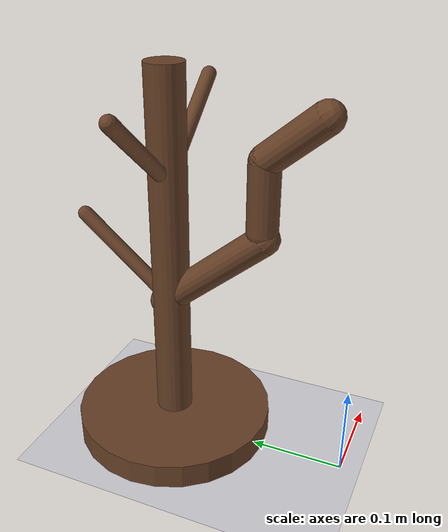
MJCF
<mujoco model="mug_rack">
    <visual>
        <headlight ambient="0.3 0.3 0.3" diffuse="0.3 0.3 0.3" specular="0.1 0.1 0.1"/>
    </visual>

    <asset>
        <texture name="tex_wood" type="2d" builtin="flat" rgb1="0.4 0.25 0.15" rgb2="0.45 0.3 0.2" width="512" height="512"/>
        <material name="mat_wood" texture="tex_wood" specular="0.1" shininess="0.1"/>

        <texture name="tex_sky" type="skybox" builtin="gradient" rgb1="0.4 0.6 0.85" rgb2="1.0 1.0 1.0" width="256" height="256"/>

        <texture name="tex_floor" type="2d" builtin="checker" rgb1="0.75 0.75 0.78" rgb2="0.88 0.88 0.9" width="512" height="512"/>
        <material name="mat_floor" texture="tex_floor" texrepeat="4 4" specular="0.1" shininess="0.1"/>
    </asset>

    <worldbody>
        <geom name="floor" type="plane" size="3 3 0.1" material="mat_floor"/>

        <light name="light_key"  directional="true" castshadow="true"  pos="1.5 -1.5 3" dir="-0.4 0.4 -1" diffuse="0.7 0.7 0.65" specular="0.3 0.3 0.3"/>
        <light name="light_fill" directional="true" castshadow="false" pos="-1.5 1.5 2" dir="0.4 -0.4 -1" diffuse="0.25 0.25 0.3"/>
        <body name="camera_center" pos="0 0 0 "/>
        <body name="mug_rack" pos="0.0 0.2 0.0" euler="0 0 -180">
            <geom name="base" type="cylinder" size="0.11 0.014" pos="0 0 0.014" material="mat_wood"/>

            <geom name="pole" type="cylinder" size="0.02 0.20" pos="0 0 0.216" material="mat_wood"/>

            <geom name="branch_top_1" type="capsule" size="0.008 0.072" pos="0.045 0 0.338" euler="0 50 0" material="mat_wood"/>
            <geom name="branch_top_2" type="capsule" size="0.008 0.072" pos="-0.045 0 0.338" euler="0 -50 0" material="mat_wood"/>

            <geom name="branch_mid_1" type="capsule" size="0.016 0.072" pos="0 0.0474 0.2099" euler="-50 0 0" material="mat_wood"/>
            <geom name="branch_mid_1_tip" type="capsule" size="0.016 0.036" pos="0 0.10 0.2990" euler="0 0 0" material="mat_wood"/>
            <geom name="branch_mid_1_tip2" type="capsule" size="0.016 0.036" pos="0 0.1276 0.3581" euler="-50 0 0" material="mat_wood"/>
            <geom name="branch_mid_2" type="capsule" size="0.008 0.072" pos="0 -0.045 0.203" euler="50 0 0" material="mat_wood"/>
        </body>

        <camera name="cam1" pos="0.7 0.1 0.75" mode="targetbody" target="camera_center"/>
        <camera name="cam2" pos="-0.5 0.5 0.75" mode="targetbody" target="camera_center"/>
        <camera name="cam3" pos="-0.5 -0.5 0.75" mode="targetbody" target="camera_center"/>
    </worldbody>
</mujoco>
